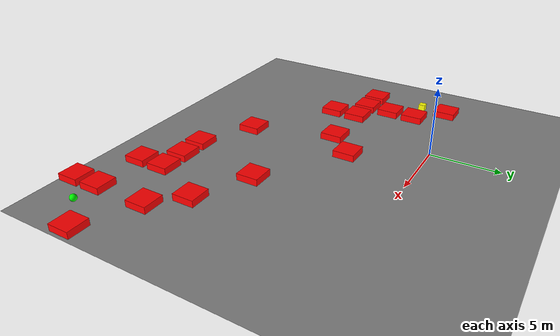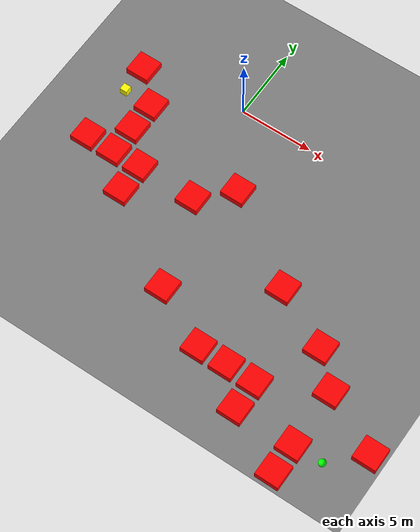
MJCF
<mujoco model="20x20_BW0_FWx20_AG1_TG1_ATmin12_ATmax15_seed0">
  <option timestep="0.01"/>

  <worldbody>
    <geom name="floor" type="plane" size="20.0 20.0 0.1" rgba="0.5 0.5 0.5 1"/>

    <body name="ob_10_6" pos="-7.0000 -1.0000 0.250">  <geom type="box" size="0.8000 0.8000 0.250"         rgba="1 0 0 1" contype="1" conaffinity="1"/></body>
        <body name="ob_11_7" pos="-5.0000 -3.0000 0.250">  <geom type="box" size="0.8000 0.8000 0.250"         rgba="1 0 0 1" contype="1" conaffinity="1"/></body>
        <body name="ob_12_7" pos="-5.0000 -5.0000 0.250">  <geom type="box" size="0.8000 0.8000 0.250"         rgba="1 0 0 1" contype="1" conaffinity="1"/></body>
        <body name="ob_12_11" pos="3.0000 -5.0000 0.250">  <geom type="box" size="0.8000 0.8000 0.250"         rgba="1 0 0 1" contype="1" conaffinity="1"/></body>
        <body name="ob_13_6" pos="-7.0000 -7.0000 0.250">  <geom type="box" size="0.8000 0.8000 0.250"         rgba="1 0 0 1" contype="1" conaffinity="1"/></body>
        <body name="ob_13_7" pos="-5.0000 -7.0000 0.250">  <geom type="box" size="0.8000 0.8000 0.250"         rgba="1 0 0 1" contype="1" conaffinity="1"/></body>
        <body name="ob_13_8" pos="-3.0000 -7.0000 0.250">  <geom type="box" size="0.8000 0.8000 0.250"         rgba="1 0 0 1" contype="1" conaffinity="1"/></body>
        <body name="ob_13_10" pos="1.0000 -7.0000 0.250">  <geom type="box" size="0.8000 0.8000 0.250"         rgba="1 0 0 1" contype="1" conaffinity="1"/></body>
        <body name="ob_14_8" pos="-3.0000 -9.0000 0.250">  <geom type="box" size="0.8000 0.8000 0.250"         rgba="1 0 0 1" contype="1" conaffinity="1"/></body>
        <body name="ob_14_14" pos="9.0000 -9.0000 0.250">  <geom type="box" size="0.8000 0.8000 0.250"         rgba="1 0 0 1" contype="1" conaffinity="1"/></body>
        <body name="ob_15_16" pos="13.0000 -11.0000 0.250">  <geom type="box" size="0.8000 0.8000 0.250"         rgba="1 0 0 1" contype="1" conaffinity="1"/></body>
        <body name="ob_16_11" pos="3.0000 -13.0000 0.250">  <geom type="box" size="0.8000 0.8000 0.250"         rgba="1 0 0 1" contype="1" conaffinity="1"/></body>
        <body name="ob_16_17" pos="15.0000 -13.0000 0.250">  <geom type="box" size="0.8000 0.8000 0.250"         rgba="1 0 0 1" contype="1" conaffinity="1"/></body>
        <body name="ob_17_13" pos="7.0000 -15.0000 0.250">  <geom type="box" size="0.8000 0.8000 0.250"         rgba="1 0 0 1" contype="1" conaffinity="1"/></body>
        <body name="ob_17_14" pos="9.0000 -15.0000 0.250">  <geom type="box" size="0.8000 0.8000 0.250"         rgba="1 0 0 1" contype="1" conaffinity="1"/></body>
        <body name="ob_17_15" pos="11.0000 -15.0000 0.250">  <geom type="box" size="0.8000 0.8000 0.250"         rgba="1 0 0 1" contype="1" conaffinity="1"/></body>
        <body name="ob_17_19" pos="19.0000 -15.0000 0.250">  <geom type="box" size="0.8000 0.8000 0.250"         rgba="1 0 0 1" contype="1" conaffinity="1"/></body>
        <body name="ob_18_15" pos="11.0000 -17.0000 0.250">  <geom type="box" size="0.8000 0.8000 0.250"         rgba="1 0 0 1" contype="1" conaffinity="1"/></body>
        <body name="ob_18_17" pos="15.0000 -17.0000 0.250">  <geom type="box" size="0.8000 0.8000 0.250"         rgba="1 0 0 1" contype="1" conaffinity="1"/></body>
        <body name="ob_19_17" pos="15.0000 -19.0000 0.250">  <geom type="box" size="0.8000 0.8000 0.250"         rgba="1 0 0 1" contype="1" conaffinity="1"/></body>

            <body name="agent_0" pos="-7.0000 -3.0000 0.250">
                <joint name="agent_0_j1" type="slide" axis="1 0 0"/>
                <joint name="agent_0_j2" type="slide" axis="0 1 0"/>
                <geom  name="agent_geom_0" type="box" size="0.25 0.25 0.250" rgba="1 1 0 1"/>
            </body>

            <body name="target_0" pos="17.0000 -17.0000 0.25">
                <geom name="target_geom_0" type="sphere" size="0.25"
                      rgba="0 1 0 1" contype="0" conaffinity="0"/>
            </body>

  </worldbody>

</mujoco>
